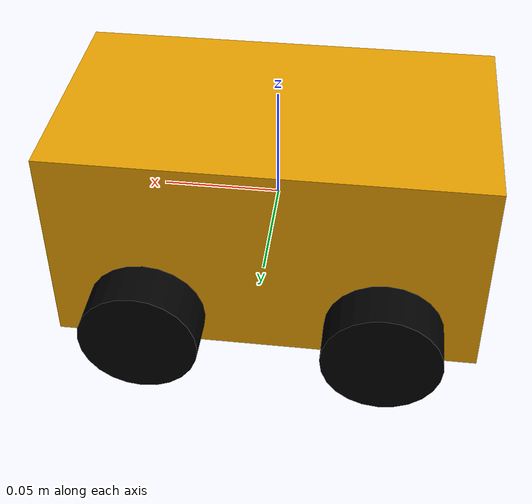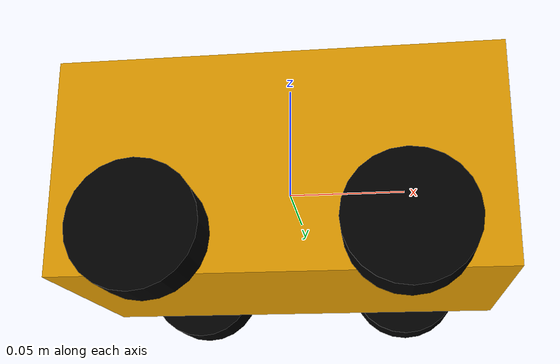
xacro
<?xml version="1.0"?>
<robot xmlns:xacro="http://www.ros.org/wiki/xacro" name="robot">

<!-- xacro arguments -->
<xacro:property name="width" value="0.1" />
<xacro:property name="bodylen" value="0.18" />

<!-- xacro macros -->
<xacro:macro name="default_origin">
   <origin rpy="1.57075 0 0" xyz="0 0 0"/>
</xacro:macro>

<xacro:macro name="wheel_create" params="prefix x y z">
	<link name="${prefix}_wheel">
		<visual>
			<xacro:default_origin />
			<geometry>
				<cylinder length="${bodylen/9}" radius="${width/4}"/>
			</geometry>
			<material name="black"/>
		</visual>
		<collision>
			<xacro:default_origin />
			<geometry>
				<cylinder length="${bodylen/9}" radius="${width/4}"/>
			</geometry>
		</collision>
		<inertial>
			<mass value="0.1"/>
			<inertia ixx="0.0005" ixy="0.0" ixz="0.0" iyy="0.0005" iyz="0.0" izz="0.0005"/>
		</inertial>
	</link>

	<joint name="${prefix}_joint" type="continuous">
		<axis rpy="0 0 0" xyz="0 1 0"/>
		<parent link="base_link"/>
		<child link="${prefix}_wheel"/>
		<origin rpy="0 0 0" xyz="${x} ${y} ${z}"/>
	</joint>

	<gazebo reference="${prefix}_wheel">
      <mu1 value="200.0"/>
      <mu2 value="100.0"/>
      <kp value="10000000.0" />
      <kd value="1.0" />
      <material>Gazebo/Black</material>
	</gazebo>
</xacro:macro>

<!-- color -->
<material name="blue">
	<color rgba="0 0 0.8 1"/>
</material>
<material name="black">
	<color rgba="0 0 0 1"/>
</material>
<material name="white">
	<color rgba="1 1 1 1"/>
</material>

<!-- base -->
<link name="base_link">
	<visual>
		<geometry>
			<box size="${bodylen} ${width} ${bodylen/2}"/>
		</geometry>
	</visual>
	<collision>
		<geometry>
			<box size="${bodylen} ${width} ${bodylen/2}"/>
		</geometry>
	</collision>
	<inertial>
    	<mass value="1.5"/>
    	<inertia ixx="0.001" ixy="0.0" ixz="0.0" iyy="0.001" iyz="0.0" izz="0.001"/>
	</inertial>
</link>

<!-- wheels -->
<xacro:wheel_create prefix="right_front" x="0.05" y="-0.06" z="-0.03" />
<xacro:wheel_create prefix="right_back" x="-0.05" y="-0.06" z="-0.03" />
<xacro:wheel_create prefix="left_front" x="0.05" y="0.06" z="-0.03" />
<xacro:wheel_create prefix="left_back" x="-0.05" y="0.06" z="-0.03" />

<!-- gazebo -->
<xacro:include filename="robot.gazebo.xacro" />

</robot>
